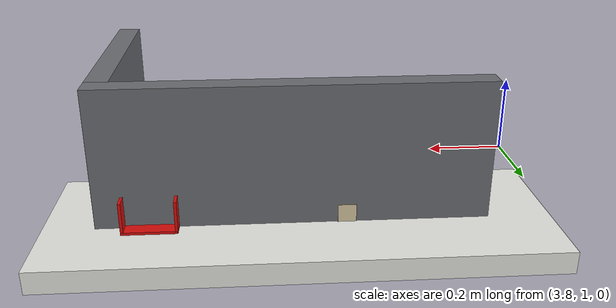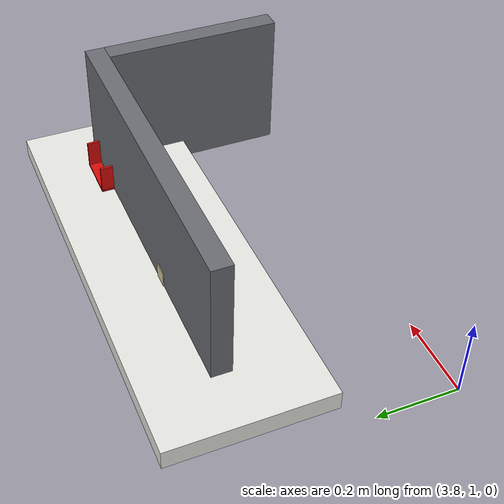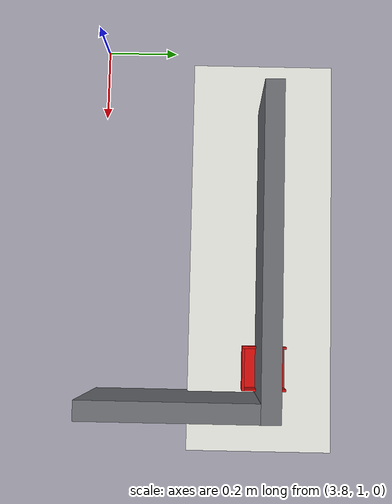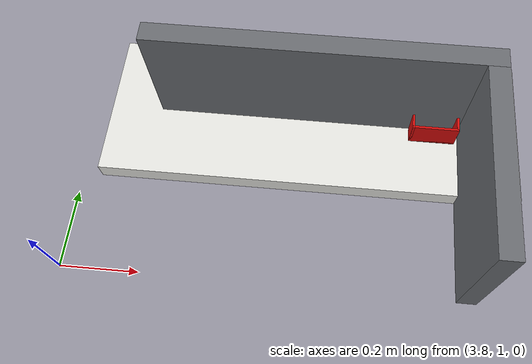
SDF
<sdf version="1.9">
 <world name="arena">
  <model name="map_wall_13">
   <static>true</static>
   <pose>4.41400 1.47000 0.18000 0 0 0.0000000</pose>
   <link name="body">
    <collision name="collision"><geometry><box><size>0.85000 0.05000 0.36000</size></box></geometry></collision>
    <visual name="appearance">
     <geometry><box><size>0.85000 0.05000 0.36000</size></box></geometry>
     <material><ambient>0.42 0.43 0.45 1</ambient><diffuse>0.42 0.43 0.45 1</diffuse></material>
    </visual>
   </link>
  </model>
  <model name="map_wall_16">
   <static>true</static>
   <pose>4.81400 1.22000 0.18000 0 0 0.0000000</pose>
   <link name="body">
    <collision name="collision"><geometry><box><size>0.05000 0.45000 0.36000</size></box></geometry></collision>
    <visual name="appearance">
     <geometry><box><size>0.05000 0.45000 0.36000</size></box></geometry>
     <material><ambient>0.42 0.43 0.45 1</ambient><diffuse>0.42 0.43 0.45 1</diffuse></material>
    </visual>
   </link>
  </model>
  <model name="ws_1_table">
   <static>true</static>
   <pose>4.40028 1.45700 0.02500 0 0 -1.5700000</pose>
   <link name="body">
    <collision name="collision"><geometry><box><size>0.40000 1.10000 0.05000</size></box></geometry></collision>
    <visual name="appearance">
     <geometry><box><size>0.40000 1.10000 0.05000</size></box></geometry>
     <material><ambient>0.91 0.91 0.89 1</ambient><diffuse>0.91 0.91 0.89 1</diffuse></material>
    </visual>
   </link>
  </model>
  <model name="cube_2">
   <pose>4.30026 1.47692 0.07000 0 0 0</pose>
   <link name="body">
    <inertial>
     <mass>0.04</mass>
     <inertia>
      <ixx>0.000010667</ixx>
      <iyy>0.000010667</iyy>
      <izz>0.000010667</izz>
      <ixy>0</ixy>
      <ixz>0</ixz>
      <iyz>0</iyz>
     </inertia>
    </inertial>
    <collision name="cube">
     <geometry><box><size>0.04 0.04 0.04</size></box></geometry>
     <surface><friction><ode><mu>1.2</mu><mu2>1.2</mu2></ode></friction></surface>
    </collision>
    <visual name="cube_appearance">
     <geometry><box><size>0.04 0.04 0.04</size></box></geometry>
     <material><ambient>0.85 0.79 0.64 1</ambient><diffuse>0.85 0.79 0.64 1</diffuse></material>
    </visual>
    <visual name="tag_0_0">
     <pose>-0.0140 0.0140 0.0202 0 0 0</pose>
     <geometry><plane><normal>0 0 1</normal><size>0.004 0.004</size></plane></geometry>
     <material><ambient>0.01 0.01 0.01 1</ambient><diffuse>0.01 0.01 0.01 1</diffuse></material>
    </visual>
    <visual name="tag_0_1">
     <pose>-0.0100 0.0140 0.0202 0 0 0</pose>
     <geometry><plane><normal>0 0 1</normal><size>0.004 0.004</size></plane></geometry>
     <material><ambient>0.01 0.01 0.01 1</ambient><diffuse>0.01 0.01 0.01 1</diffuse></material>
    </visual>
    <visual name="tag_0_2">
     <pose>-0.0060 0.0140 0.0202 0 0 0</pose>
     <geometry><plane><normal>0 0 1</normal><size>0.004 0.004</size></plane></geometry>
     <material><ambient>0.01 0.01 0.01 1</ambient><diffuse>0.01 0.01 0.01 1</diffuse></material>
    </visual>
    <visual name="tag_0_3">
     <pose>-0.0020 0.0140 0.0202 0 0 0</pose>
     <geometry><plane><normal>0 0 1</normal><size>0.004 0.004</size></plane></geometry>
     <material><ambient>0.01 0.01 0.01 1</ambient><diffuse>0.01 0.01 0.01 1</diffuse></material>
    </visual>
    <visual name="tag_0_4">
     <pose>0.0020 0.0140 0.0202 0 0 0</pose>
     <geometry><plane><normal>0 0 1</normal><size>0.004 0.004</size></plane></geometry>
     <material><ambient>0.01 0.01 0.01 1</ambient><diffuse>0.01 0.01 0.01 1</diffuse></material>
    </visual>
    <visual name="tag_0_5">
     <pose>0.0060 0.0140 0.0202 0 0 0</pose>
     <geometry><plane><normal>0 0 1</normal><size>0.004 0.004</size></plane></geometry>
     <material><ambient>0.01 0.01 0.01 1</ambient><diffuse>0.01 0.01 0.01 1</diffuse></material>
    </visual>
    <visual name="tag_0_6">
     <pose>0.0100 0.0140 0.0202 0 0 0</pose>
     <geometry><plane><normal>0 0 1</normal><size>0.004 0.004</size></plane></geometry>
     <material><ambient>0.01 0.01 0.01 1</ambient><diffuse>0.01 0.01 0.01 1</diffuse></material>
    </visual>
    <visual name="tag_0_7">
     <pose>0.0140 0.0140 0.0202 0 0 0</pose>
     <geometry><plane><normal>0 0 1</normal><size>0.004 0.004</size></plane></geometry>
     <material><ambient>0.01 0.01 0.01 1</ambient><diffuse>0.01 0.01 0.01 1</diffuse></material>
    </visual>
    <visual name="tag_1_0">
     <pose>-0.0140 0.0100 0.0202 0 0 0</pose>
     <geometry><plane><normal>0 0 1</normal><size>0.004 0.004</size></plane></geometry>
     <material><ambient>0.01 0.01 0.01 1</ambient><diffuse>0.01 0.01 0.01 1</diffuse></material>
    </visual>
    <visual name="tag_1_1">
     <pose>-0.0100 0.0100 0.0202 0 0 0</pose>
     <geometry><plane><normal>0 0 1</normal><size>0.004 0.004</size></plane></geometry>
     <material><ambient>0.01 0.01 0.01 1</ambient><diffuse>0.01 0.01 0.01 1</diffuse></material>
    </visual>
    <visual name="tag_1_2">
     <pose>-0.0060 0.0100 0.0202 0 0 0</pose>
     <geometry><plane><normal>0 0 1</normal><size>0.004 0.004</size></plane></geometry>
     <material><ambient>0.95 0.95 0.95 1</ambient><diffuse>0.95 0.95 0.95 1</diffuse></material>
    </visual>
    <visual name="tag_1_3">
     <pose>-0.0020 0.0100 0.0202 0 0 0</pose>
     <geometry><plane><normal>0 0 1</normal><size>0.004 0.004</size></plane></geometry>
     <material><ambient>0.95 0.95 0.95 1</ambient><diffuse>0.95 0.95 0.95 1</diffuse></material>
    </visual>
    <visual name="tag_1_4">
     <pose>0.0020 0.0100 0.0202 0 0 0</pose>
     <geometry><plane><normal>0 0 1</normal><size>0.004 0.004</size></plane></geometry>
     <material><ambient>0.95 0.95 0.95 1</ambient><diffuse>0.95 0.95 0.95 1</diffuse></material>
    </visual>
    <visual name="tag_1_5">
     <pose>0.0060 0.0100 0.0202 0 0 0</pose>
     <geometry><plane><normal>0 0 1</normal><size>0.004 0.004</size></plane></geometry>
     <material><ambient>0.01 0.01 0.01 1</ambient><diffuse>0.01 0.01 0.01 1</diffuse></material>
    </visual>
    <visual name="tag_1_6">
     <pose>0.0100 0.0100 0.0202 0 0 0</pose>
     <geometry><plane><normal>0 0 1</normal><size>0.004 0.004</size></plane></geometry>
     <material><ambient>0.01 0.01 0.01 1</ambient><diffuse>0.01 0.01 0.01 1</diffuse></material>
    </visual>
    <visual name="tag_1_7">
     <pose>0.0140 0.0100 0.0202 0 0 0</pose>
     <geometry><plane><normal>0 0 1</normal><size>0.004 0.004</size></plane></geometry>
     <material><ambient>0.01 0.01 0.01 1</ambient><diffuse>0.01 0.01 0.01 1</diffuse></material>
    </visual>
    <visual name="tag_2_0">
     <pose>-0.0140 0.0060 0.0202 0 0 0</pose>
     <geometry><plane><normal>0 0 1</normal><size>0.004 0.004</size></plane></geometry>
     <material><ambient>0.01 0.01 0.01 1</ambient><diffuse>0.01 0.01 0.01 1</diffuse></material>
    </visual>
    <visual name="tag_2_1">
     <pose>-0.0100 0.0060 0.0202 0 0 0</pose>
     <geometry><plane><normal>0 0 1</normal><size>0.004 0.004</size></plane></geometry>
     <material><ambient>0.01 0.01 0.01 1</ambient><diffuse>0.01 0.01 0.01 1</diffuse></material>
    </visual>
    <visual name="tag_2_2">
     <pose>-0.0060 0.0060 0.0202 0 0 0</pose>
     <geometry><plane><normal>0 0 1</normal><size>0.004 0.004</size></plane></geometry>
     <material><ambient>0.01 0.01 0.01 1</ambient><diffuse>0.01 0.01 0.01 1</diffuse></material>
    </visual>
    <visual name="tag_2_3">
     <pose>-0.0020 0.0060 0.0202 0 0 0</pose>
     <geometry><plane><normal>0 0 1</normal><size>0.004 0.004</size></plane></geometry>
     <material><ambient>0.95 0.95 0.95 1</ambient><diffuse>0.95 0.95 0.95 1</diffuse></material>
    </visual>
    <visual name="tag_2_4">
     <pose>0.0020 0.0060 0.0202 0 0 0</pose>
     <geometry><plane><normal>0 0 1</normal><size>0.004 0.004</size></plane></geometry>
     <material><ambient>0.01 0.01 0.01 1</ambient><diffuse>0.01 0.01 0.01 1</diffuse></material>
    </visual>
    <visual name="tag_2_5">
     <pose>0.0060 0.0060 0.0202 0 0 0</pose>
     <geometry><plane><normal>0 0 1</normal><size>0.004 0.004</size></plane></geometry>
     <material><ambient>0.01 0.01 0.01 1</ambient><diffuse>0.01 0.01 0.01 1</diffuse></material>
    </visual>
    <visual name="tag_2_6">
     <pose>0.0100 0.0060 0.0202 0 0 0</pose>
     <geometry><plane><normal>0 0 1</normal><size>0.004 0.004</size></plane></geometry>
     <material><ambient>0.01 0.01 0.01 1</ambient><diffuse>0.01 0.01 0.01 1</diffuse></material>
    </visual>
    <visual name="tag_2_7">
     <pose>0.0140 0.0060 0.0202 0 0 0</pose>
     <geometry><plane><normal>0 0 1</normal><size>0.004 0.004</size></plane></geometry>
     <material><ambient>0.01 0.01 0.01 1</ambient><diffuse>0.01 0.01 0.01 1</diffuse></material>
    </visual>
    <visual name="tag_3_0">
     <pose>-0.0140 0.0020 0.0202 0 0 0</pose>
     <geometry><plane><normal>0 0 1</normal><size>0.004 0.004</size></plane></geometry>
     <material><ambient>0.01 0.01 0.01 1</ambient><diffuse>0.01 0.01 0.01 1</diffuse></material>
    </visual>
    <visual name="tag_3_1">
     <pose>-0.0100 0.0020 0.0202 0 0 0</pose>
     <geometry><plane><normal>0 0 1</normal><size>0.004 0.004</size></plane></geometry>
     <material><ambient>0.95 0.95 0.95 1</ambient><diffuse>0.95 0.95 0.95 1</diffuse></material>
    </visual>
    <visual name="tag_3_2">
     <pose>-0.0060 0.0020 0.0202 0 0 0</pose>
     <geometry><plane><normal>0 0 1</normal><size>0.004 0.004</size></plane></geometry>
     <material><ambient>0.01 0.01 0.01 1</ambient><diffuse>0.01 0.01 0.01 1</diffuse></material>
    </visual>
    <visual name="tag_3_3">
     <pose>-0.0020 0.0020 0.0202 0 0 0</pose>
     <geometry><plane><normal>0 0 1</normal><size>0.004 0.004</size></plane></geometry>
     <material><ambient>0.01 0.01 0.01 1</ambient><diffuse>0.01 0.01 0.01 1</diffuse></material>
    </visual>
    <visual name="tag_3_4">
     <pose>0.0020 0.0020 0.0202 0 0 0</pose>
     <geometry><plane><normal>0 0 1</normal><size>0.004 0.004</size></plane></geometry>
     <material><ambient>0.95 0.95 0.95 1</ambient><diffuse>0.95 0.95 0.95 1</diffuse></material>
    </visual>
    <visual name="tag_3_5">
     <pose>0.0060 0.0020 0.0202 0 0 0</pose>
     <geometry><plane><normal>0 0 1</normal><size>0.004 0.004</size></plane></geometry>
     <material><ambient>0.01 0.01 0.01 1</ambient><diffuse>0.01 0.01 0.01 1</diffuse></material>
    </visual>
    <visual name="tag_3_6">
     <pose>0.0100 0.0020 0.0202 0 0 0</pose>
     <geometry><plane><normal>0 0 1</normal><size>0.004 0.004</size></plane></geometry>
     <material><ambient>0.01 0.01 0.01 1</ambient><diffuse>0.01 0.01 0.01 1</diffuse></material>
    </visual>
    <visual name="tag_3_7">
     <pose>0.0140 0.0020 0.0202 0 0 0</pose>
     <geometry><plane><normal>0 0 1</normal><size>0.004 0.004</size></plane></geometry>
     <material><ambient>0.01 0.01 0.01 1</ambient><diffuse>0.01 0.01 0.01 1</diffuse></material>
    </visual>
    <visual name="tag_4_0">
     <pose>-0.0140 -0.0020 0.0202 0 0 0</pose>
     <geometry><plane><normal>0 0 1</normal><size>0.004 0.004</size></plane></geometry>
     <material><ambient>0.01 0.01 0.01 1</ambient><diffuse>0.01 0.01 0.01 1</diffuse></material>
    </visual>
    <visual name="tag_4_1">
     <pose>-0.0100 -0.0020 0.0202 0 0 0</pose>
     <geometry><plane><normal>0 0 1</normal><size>0.004 0.004</size></plane></geometry>
     <material><ambient>0.01 0.01 0.01 1</ambient><diffuse>0.01 0.01 0.01 1</diffuse></material>
    </visual>
    <visual name="tag_4_2">
     <pose>-0.0060 -0.0020 0.0202 0 0 0</pose>
     <geometry><plane><normal>0 0 1</normal><size>0.004 0.004</size></plane></geometry>
     <material><ambient>0.01 0.01 0.01 1</ambient><diffuse>0.01 0.01 0.01 1</diffuse></material>
    </visual>
    <visual name="tag_4_3">
     <pose>-0.0020 -0.0020 0.0202 0 0 0</pose>
     <geometry><plane><normal>0 0 1</normal><size>0.004 0.004</size></plane></geometry>
     <material><ambient>0.01 0.01 0.01 1</ambient><diffuse>0.01 0.01 0.01 1</diffuse></material>
    </visual>
    <visual name="tag_4_4">
     <pose>0.0020 -0.0020 0.0202 0 0 0</pose>
     <geometry><plane><normal>0 0 1</normal><size>0.004 0.004</size></plane></geometry>
     <material><ambient>0.01 0.01 0.01 1</ambient><diffuse>0.01 0.01 0.01 1</diffuse></material>
    </visual>
    <visual name="tag_4_5">
     <pose>0.0060 -0.0020 0.0202 0 0 0</pose>
     <geometry><plane><normal>0 0 1</normal><size>0.004 0.004</size></plane></geometry>
     <material><ambient>0.01 0.01 0.01 1</ambient><diffuse>0.01 0.01 0.01 1</diffuse></material>
    </visual>
    <visual name="tag_4_6">
     <pose>0.0100 -0.0020 0.0202 0 0 0</pose>
     <geometry><plane><normal>0 0 1</normal><size>0.004 0.004</size></plane></geometry>
     <material><ambient>0.95 0.95 0.95 1</ambient><diffuse>0.95 0.95 0.95 1</diffuse></material>
    </visual>
    <visual name="tag_4_7">
     <pose>0.0140 -0.0020 0.0202 0 0 0</pose>
     <geometry><plane><normal>0 0 1</normal><size>0.004 0.004</size></plane></geometry>
     <material><ambient>0.01 0.01 0.01 1</ambient><diffuse>0.01 0.01 0.01 1</diffuse></material>
    </visual>
    <visual name="tag_5_0">
     <pose>-0.0140 -0.0060 0.0202 0 0 0</pose>
     <geometry><plane><normal>0 0 1</normal><size>0.004 0.004</size></plane></geometry>
     <material><ambient>0.01 0.01 0.01 1</ambient><diffuse>0.01 0.01 0.01 1</diffuse></material>
    </visual>
    <visual name="tag_5_1">
     <pose>-0.0100 -0.0060 0.0202 0 0 0</pose>
     <geometry><plane><normal>0 0 1</normal><size>0.004 0.004</size></plane></geometry>
     <material><ambient>0.01 0.01 0.01 1</ambient><diffuse>0.01 0.01 0.01 1</diffuse></material>
    </visual>
    <visual name="tag_5_2">
     <pose>-0.0060 -0.0060 0.0202 0 0 0</pose>
     <geometry><plane><normal>0 0 1</normal><size>0.004 0.004</size></plane></geometry>
     <material><ambient>0.95 0.95 0.95 1</ambient><diffuse>0.95 0.95 0.95 1</diffuse></material>
    </visual>
    <visual name="tag_5_3">
     <pose>-0.0020 -0.0060 0.0202 0 0 0</pose>
     <geometry><plane><normal>0 0 1</normal><size>0.004 0.004</size></plane></geometry>
     <material><ambient>0.01 0.01 0.01 1</ambient><diffuse>0.01 0.01 0.01 1</diffuse></material>
    </visual>
    <visual name="tag_5_4">
     <pose>0.0020 -0.0060 0.0202 0 0 0</pose>
     <geometry><plane><normal>0 0 1</normal><size>0.004 0.004</size></plane></geometry>
     <material><ambient>0.01 0.01 0.01 1</ambient><diffuse>0.01 0.01 0.01 1</diffuse></material>
    </visual>
    <visual name="tag_5_5">
     <pose>0.0060 -0.0060 0.0202 0 0 0</pose>
     <geometry><plane><normal>0 0 1</normal><size>0.004 0.004</size></plane></geometry>
     <material><ambient>0.95 0.95 0.95 1</ambient><diffuse>0.95 0.95 0.95 1</diffuse></material>
    </visual>
    <visual name="tag_5_6">
     <pose>0.0100 -0.0060 0.0202 0 0 0</pose>
     <geometry><plane><normal>0 0 1</normal><size>0.004 0.004</size></plane></geometry>
     <material><ambient>0.01 0.01 0.01 1</ambient><diffuse>0.01 0.01 0.01 1</diffuse></material>
    </visual>
    <visual name="tag_5_7">
     <pose>0.0140 -0.0060 0.0202 0 0 0</pose>
     <geometry><plane><normal>0 0 1</normal><size>0.004 0.004</size></plane></geometry>
     <material><ambient>0.01 0.01 0.01 1</ambient><diffuse>0.01 0.01 0.01 1</diffuse></material>
    </visual>
    <visual name="tag_6_0">
     <pose>-0.0140 -0.0100 0.0202 0 0 0</pose>
     <geometry><plane><normal>0 0 1</normal><size>0.004 0.004</size></plane></geometry>
     <material><ambient>0.01 0.01 0.01 1</ambient><diffuse>0.01 0.01 0.01 1</diffuse></material>
    </visual>
    <visual name="tag_6_1">
     <pose>-0.0100 -0.0100 0.0202 0 0 0</pose>
     <geometry><plane><normal>0 0 1</normal><size>0.004 0.004</size></plane></geometry>
     <material><ambient>0.95 0.95 0.95 1</ambient><diffuse>0.95 0.95 0.95 1</diffuse></material>
    </visual>
    <visual name="tag_6_2">
     <pose>-0.0060 -0.0100 0.0202 0 0 0</pose>
     <geometry><plane><normal>0 0 1</normal><size>0.004 0.004</size></plane></geometry>
     <material><ambient>0.95 0.95 0.95 1</ambient><diffuse>0.95 0.95 0.95 1</diffuse></material>
    </visual>
    <visual name="tag_6_3">
     <pose>-0.0020 -0.0100 0.0202 0 0 0</pose>
     <geometry><plane><normal>0 0 1</normal><size>0.004 0.004</size></plane></geometry>
     <material><ambient>0.95 0.95 0.95 1</ambient><diffuse>0.95 0.95 0.95 1</diffuse></material>
    </visual>
    <visual name="tag_6_4">
     <pose>0.0020 -0.0100 0.0202 0 0 0</pose>
     <geometry><plane><normal>0 0 1</normal><size>0.004 0.004</size></plane></geometry>
     <material><ambient>0.01 0.01 0.01 1</ambient><diffuse>0.01 0.01 0.01 1</diffuse></material>
    </visual>
    <visual name="tag_6_5">
     <pose>0.0060 -0.0100 0.0202 0 0 0</pose>
     <geometry><plane><normal>0 0 1</normal><size>0.004 0.004</size></plane></geometry>
     <material><ambient>0.95 0.95 0.95 1</ambient><diffuse>0.95 0.95 0.95 1</diffuse></material>
    </visual>
    <visual name="tag_6_6">
     <pose>0.0100 -0.0100 0.0202 0 0 0</pose>
     <geometry><plane><normal>0 0 1</normal><size>0.004 0.004</size></plane></geometry>
     <material><ambient>0.95 0.95 0.95 1</ambient><diffuse>0.95 0.95 0.95 1</diffuse></material>
    </visual>
    <visual name="tag_6_7">
     <pose>0.0140 -0.0100 0.0202 0 0 0</pose>
     <geometry><plane><normal>0 0 1</normal><size>0.004 0.004</size></plane></geometry>
     <material><ambient>0.01 0.01 0.01 1</ambient><diffuse>0.01 0.01 0.01 1</diffuse></material>
    </visual>
    <visual name="tag_7_0">
     <pose>-0.0140 -0.0140 0.0202 0 0 0</pose>
     <geometry><plane><normal>0 0 1</normal><size>0.004 0.004</size></plane></geometry>
     <material><ambient>0.01 0.01 0.01 1</ambient><diffuse>0.01 0.01 0.01 1</diffuse></material>
    </visual>
    <visual name="tag_7_1">
     <pose>-0.0100 -0.0140 0.0202 0 0 0</pose>
     <geometry><plane><normal>0 0 1</normal><size>0.004 0.004</size></plane></geometry>
     <material><ambient>0.01 0.01 0.01 1</ambient><diffuse>0.01 0.01 0.01 1</diffuse></material>
    </visual>
    <visual name="tag_7_2">
     <pose>-0.0060 -0.0140 0.0202 0 0 0</pose>
     <geometry><plane><normal>0 0 1</normal><size>0.004 0.004</size></plane></geometry>
     <material><ambient>0.01 0.01 0.01 1</ambient><diffuse>0.01 0.01 0.01 1</diffuse></material>
    </visual>
    <visual name="tag_7_3">
     <pose>-0.0020 -0.0140 0.0202 0 0 0</pose>
     <geometry><plane><normal>0 0 1</normal><size>0.004 0.004</size></plane></geometry>
     <material><ambient>0.01 0.01 0.01 1</ambient><diffuse>0.01 0.01 0.01 1</diffuse></material>
    </visual>
    <visual name="tag_7_4">
     <pose>0.0020 -0.0140 0.0202 0 0 0</pose>
     <geometry><plane><normal>0 0 1</normal><size>0.004 0.004</size></plane></geometry>
     <material><ambient>0.01 0.01 0.01 1</ambient><diffuse>0.01 0.01 0.01 1</diffuse></material>
    </visual>
    <visual name="tag_7_5">
     <pose>0.0060 -0.0140 0.0202 0 0 0</pose>
     <geometry><plane><normal>0 0 1</normal><size>0.004 0.004</size></plane></geometry>
     <material><ambient>0.01 0.01 0.01 1</ambient><diffuse>0.01 0.01 0.01 1</diffuse></material>
    </visual>
    <visual name="tag_7_6">
     <pose>0.0100 -0.0140 0.0202 0 0 0</pose>
     <geometry><plane><normal>0 0 1</normal><size>0.004 0.004</size></plane></geometry>
     <material><ambient>0.01 0.01 0.01 1</ambient><diffuse>0.01 0.01 0.01 1</diffuse></material>
    </visual>
    <visual name="tag_7_7">
     <pose>0.0140 -0.0140 0.0202 0 0 0</pose>
     <geometry><plane><normal>0 0 1</normal><size>0.004 0.004</size></plane></geometry>
     <material><ambient>0.01 0.01 0.01 1</ambient><diffuse>0.01 0.01 0.01 1</diffuse></material>
    </visual>
   </link>
  </model>
  <model name="ws_1_red_base">
   <static>true</static>
   <pose>4.72027 1.46725 0.05300 0 0 0.0000000</pose>
   <link name="body">
    <collision name="collision"><geometry><box><size>0.12000 0.12000 0.00600</size></box></geometry></collision>
    <visual name="appearance">
     <geometry><box><size>0.12000 0.12000 0.00600</size></box></geometry>
     <material><ambient>0.85 0.05 0.04 1</ambient><diffuse>0.85 0.05 0.04 1</diffuse></material>
    </visual>
   </link>
  </model>
  <model name="ws_1_red_front">
   <static>true</static>
   <pose>4.77727 1.46725 0.08650 0 0 0.0000000</pose>
   <link name="body">
    <collision name="collision"><geometry><box><size>0.00600 0.12000 0.07300</size></box></geometry></collision>
    <visual name="appearance">
     <geometry><box><size>0.00600 0.12000 0.07300</size></box></geometry>
     <material><ambient>0.85 0.05 0.04 1</ambient><diffuse>0.85 0.05 0.04 1</diffuse></material>
    </visual>
   </link>
  </model>
  <model name="ws_1_red_back">
   <static>true</static>
   <pose>4.66327 1.46725 0.08650 0 0 0.0000000</pose>
   <link name="body">
    <collision name="collision"><geometry><box><size>0.00600 0.12000 0.07300</size></box></geometry></collision>
    <visual name="appearance">
     <geometry><box><size>0.00600 0.12000 0.07300</size></box></geometry>
     <material><ambient>0.85 0.05 0.04 1</ambient><diffuse>0.85 0.05 0.04 1</diffuse></material>
    </visual>
   </link>
  </model>
  <model name="ws_1_red_right">
   <static>true</static>
   <pose>4.72027 1.41025 0.08650 0 0 0.0000000</pose>
   <link name="body">
    <collision name="collision"><geometry><box><size>0.12000 0.00600 0.07300</size></box></geometry></collision>
    <visual name="appearance">
     <geometry><box><size>0.12000 0.00600 0.07300</size></box></geometry>
     <material><ambient>0.85 0.05 0.04 1</ambient><diffuse>0.85 0.05 0.04 1</diffuse></material>
    </visual>
   </link>
  </model>
 </world>
</sdf>
